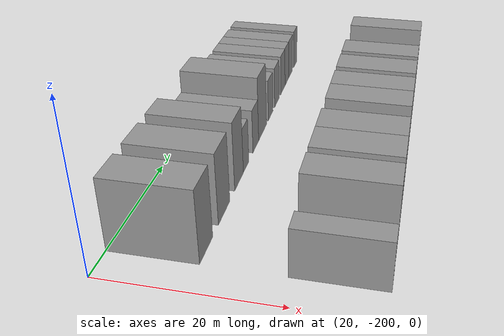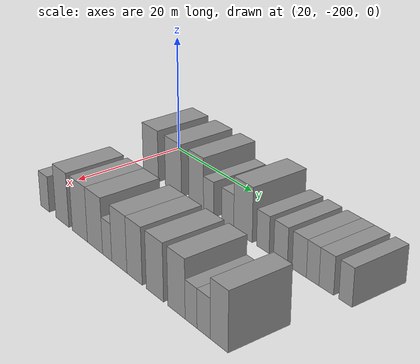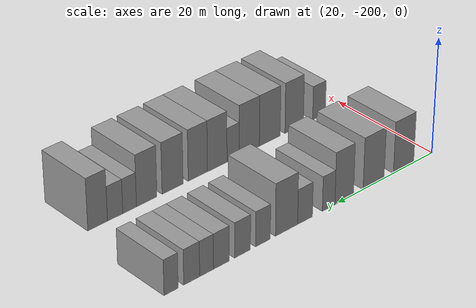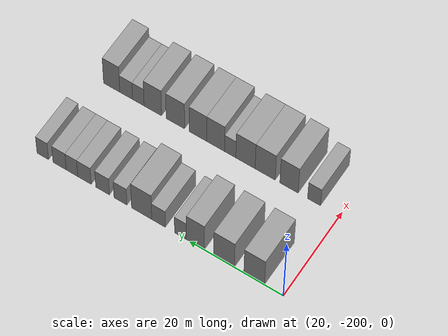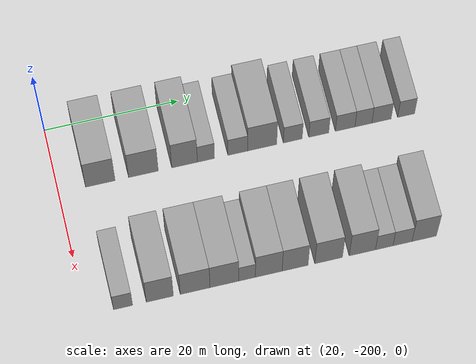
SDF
<sdf version="1.6">
 <world name="default">
  <model name="building_1">
   <static>1</static>
   <pose>25.0000 -193.8158 0 0.000000 0.000000 0.000000</pose>
   <link name="link">
    <pose>0 0 4.50 0 0 0</pose>
    <collision name="collision"><geometry><box><size>10.0000 4.3684 9.0000</size></box></geometry></collision>
    <visual name="visual">
     <cast_shadows>0</cast_shadows>
     <geometry><box><size>10.0000 4.3684 9.0000</size></box></geometry>
     <material>
      <script>
       <uri>model://grey_wall/materials/scripts</uri>
       <uri>model://grey_wall/materials/textures</uri>
       <name>vrc/grey_wall</name>
      </script>
     </material>
    </visual>
   </link>
  </model>
  <model name="building_2">
   <static>1</static>
   <pose>25.0000 -187.4252 0 0.000000 0.000000 0.000000</pose>
   <link name="link">
    <pose>0 0 4.50 0 0 0</pose>
    <collision name="collision"><geometry><box><size>10.0000 4.4127 9.0000</size></box></geometry></collision>
    <visual name="visual">
     <cast_shadows>0</cast_shadows>
     <geometry><box><size>10.0000 4.4127 9.0000</size></box></geometry>
     <material>
      <script>
       <uri>model://grey_wall/materials/scripts</uri>
       <uri>model://grey_wall/materials/textures</uri>
       <name>vrc/grey_wall</name>
      </script>
     </material>
    </visual>
   </link>
  </model>
  <model name="building_3">
   <static>1</static>
   <pose>25.0000 -181.3065 0 0.000000 0.000000 0.000000</pose>
   <link name="link">
    <pose>0 0 4.50 0 0 0</pose>
    <collision name="collision"><geometry><box><size>10.0000 3.8246 9.0000</size></box></geometry></collision>
    <visual name="visual">
     <cast_shadows>0</cast_shadows>
     <geometry><box><size>10.0000 3.8246 9.0000</size></box></geometry>
     <material>
      <script>
       <uri>model://grey_wall/materials/scripts</uri>
       <uri>model://grey_wall/materials/textures</uri>
       <name>vrc/grey_wall</name>
      </script>
     </material>
    </visual>
   </link>
  </model>
  <model name="building_4">
   <static>1</static>
   <pose>25.0000 -178.1168 0 0.000000 0.000000 0.000000</pose>
   <link name="link">
    <pose>0 0 3.00 0 0 0</pose>
    <collision name="collision"><geometry><box><size>10.0000 2.5548 6.0000</size></box></geometry></collision>
    <visual name="visual">
     <cast_shadows>0</cast_shadows>
     <geometry><box><size>10.0000 2.5548 6.0000</size></box></geometry>
     <material>
      <script>
       <uri>model://grey_wall/materials/scripts</uri>
       <uri>model://grey_wall/materials/textures</uri>
       <name>vrc/grey_wall</name>
      </script>
     </material>
    </visual>
   </link>
  </model>
  <model name="building_5">
   <static>1</static>
   <pose>25.0000 -173.3668 0 0.000000 0.000000 0.000000</pose>
   <link name="link">
    <pose>0 0 3.00 0 0 0</pose>
    <collision name="collision"><geometry><box><size>10.0000 2.9451 6.0000</size></box></geometry></collision>
    <visual name="visual">
     <cast_shadows>0</cast_shadows>
     <geometry><box><size>10.0000 2.9451 6.0000</size></box></geometry>
     <material>
      <script>
       <uri>model://grey_wall/materials/scripts</uri>
       <uri>model://grey_wall/materials/textures</uri>
       <name>vrc/grey_wall</name>
      </script>
     </material>
    </visual>
   </link>
  </model>
  <model name="building_6">
   <static>1</static>
   <pose>25.0000 -169.7110 0 0.000000 0.000000 0.000000</pose>
   <link name="link">
    <pose>0 0 4.50 0 0 0</pose>
    <collision name="collision"><geometry><box><size>10.0000 4.3665 9.0000</size></box></geometry></collision>
    <visual name="visual">
     <cast_shadows>0</cast_shadows>
     <geometry><box><size>10.0000 4.3665 9.0000</size></box></geometry>
     <material>
      <script>
       <uri>model://grey_wall/materials/scripts</uri>
       <uri>model://grey_wall/materials/textures</uri>
       <name>vrc/grey_wall</name>
      </script>
     </material>
    </visual>
   </link>
  </model>
  <model name="building_7">
   <static>1</static>
   <pose>25.0000 -165.1141 0 0.000000 0.000000 0.000000</pose>
   <link name="link">
    <pose>0 0 3.00 0 0 0</pose>
    <collision name="collision"><geometry><box><size>10.0000 2.8274 6.0000</size></box></geometry></collision>
    <visual name="visual">
     <cast_shadows>0</cast_shadows>
     <geometry><box><size>10.0000 2.8274 6.0000</size></box></geometry>
     <material>
      <script>
       <uri>model://grey_wall/materials/scripts</uri>
       <uri>model://grey_wall/materials/textures</uri>
       <name>vrc/grey_wall</name>
      </script>
     </material>
    </visual>
   </link>
  </model>
  <model name="building_8">
   <static>1</static>
   <pose>25.0000 -161.2014 0 0.000000 0.000000 0.000000</pose>
   <link name="link">
    <pose>0 0 3.00 0 0 0</pose>
    <collision name="collision"><geometry><box><size>10.0000 2.9981 6.0000</size></box></geometry></collision>
    <visual name="visual">
     <cast_shadows>0</cast_shadows>
     <geometry><box><size>10.0000 2.9981 6.0000</size></box></geometry>
     <material>
      <script>
       <uri>model://grey_wall/materials/scripts</uri>
       <uri>model://grey_wall/materials/textures</uri>
       <name>vrc/grey_wall</name>
      </script>
     </material>
    </visual>
   </link>
  </model>
  <model name="building_9">
   <static>1</static>
   <pose>25.0000 -157.2229 0 0.000000 0.000000 0.000000</pose>
   <link name="link">
    <pose>0 0 3.00 0 0 0</pose>
    <collision name="collision"><geometry><box><size>10.0000 2.9589 6.0000</size></box></geometry></collision>
    <visual name="visual">
     <cast_shadows>0</cast_shadows>
     <geometry><box><size>10.0000 2.9589 6.0000</size></box></geometry>
     <material>
      <script>
       <uri>model://grey_wall/materials/scripts</uri>
       <uri>model://grey_wall/materials/textures</uri>
       <name>vrc/grey_wall</name>
      </script>
     </material>
    </visual>
   </link>
  </model>
  <model name="building_10">
   <static>1</static>
   <pose>25.0000 -154.4646 0 0.000000 0.000000 0.000000</pose>
   <link name="link">
    <pose>0 0 3.00 0 0 0</pose>
    <collision name="collision"><geometry><box><size>10.0000 2.5576 6.0000</size></box></geometry></collision>
    <visual name="visual">
     <cast_shadows>0</cast_shadows>
     <geometry><box><size>10.0000 2.5576 6.0000</size></box></geometry>
     <material>
      <script>
       <uri>model://grey_wall/materials/scripts</uri>
       <uri>model://grey_wall/materials/textures</uri>
       <name>vrc/grey_wall</name>
      </script>
     </material>
    </visual>
   </link>
  </model>
  <model name="building_11">
   <static>1</static>
   <pose>25.0000 -151.7313 0 0.000000 0.000000 0.000000</pose>
   <link name="link">
    <pose>0 0 3.00 0 0 0</pose>
    <collision name="collision"><geometry><box><size>10.0000 2.9090 6.0000</size></box></geometry></collision>
    <visual name="visual">
     <cast_shadows>0</cast_shadows>
     <geometry><box><size>10.0000 2.9090 6.0000</size></box></geometry>
     <material>
      <script>
       <uri>model://grey_wall/materials/scripts</uri>
       <uri>model://grey_wall/materials/textures</uri>
       <name>vrc/grey_wall</name>
      </script>
     </material>
    </visual>
   </link>
  </model>
  <model name="building_12">
   <static>1</static>
   <pose>25.0000 -148.0010 0 0.000000 0.000000 0.000000</pose>
   <link name="link">
    <pose>0 0 3.00 0 0 0</pose>
    <collision name="collision"><geometry><box><size>10.0000 2.5517 6.0000</size></box></geometry></collision>
    <visual name="visual">
     <cast_shadows>0</cast_shadows>
     <geometry><box><size>10.0000 2.5517 6.0000</size></box></geometry>
     <material>
      <script>
       <uri>model://grey_wall/materials/scripts</uri>
       <uri>model://grey_wall/materials/textures</uri>
       <name>vrc/grey_wall</name>
      </script>
     </material>
    </visual>
   </link>
  </model>
  <model name="building_99">
   <static>1</static>
   <pose>44.0000 -194.6192 0 0.000000 0.000000 0.000000</pose>
   <link name="link">
    <pose>0 0 3.00 0 0 0</pose>
    <collision name="collision"><geometry><box><size>10.0000 2.7616 6.0000</size></box></geometry></collision>
    <visual name="visual">
     <cast_shadows>0</cast_shadows>
     <geometry><box><size>10.0000 2.7616 6.0000</size></box></geometry>
     <material>
      <script>
       <uri>model://grey_wall/materials/scripts</uri>
       <uri>model://grey_wall/materials/textures</uri>
       <name>vrc/grey_wall</name>
      </script>
     </material>
    </visual>
   </link>
  </model>
  <model name="building_100">
   <static>1</static>
   <pose>44.0000 -189.2688 0 0.000000 0.000000 0.000000</pose>
   <link name="link">
    <pose>0 0 4.50 0 0 0</pose>
    <collision name="collision"><geometry><box><size>10.0000 3.9391 9.0000</size></box></geometry></collision>
    <visual name="visual">
     <cast_shadows>0</cast_shadows>
     <geometry><box><size>10.0000 3.9391 9.0000</size></box></geometry>
     <material>
      <script>
       <uri>model://grey_wall/materials/scripts</uri>
       <uri>model://grey_wall/materials/textures</uri>
       <name>vrc/grey_wall</name>
      </script>
     </material>
    </visual>
   </link>
  </model>
  <model name="building_101">
   <static>1</static>
   <pose>44.0000 -184.1315 0 0.000000 0.000000 0.000000</pose>
   <link name="link">
    <pose>0 0 4.50 0 0 0</pose>
    <collision name="collision"><geometry><box><size>10.0000 4.3356 9.0000</size></box></geometry></collision>
    <visual name="visual">
     <cast_shadows>0</cast_shadows>
     <geometry><box><size>10.0000 4.3356 9.0000</size></box></geometry>
     <material>
      <script>
       <uri>model://grey_wall/materials/scripts</uri>
       <uri>model://grey_wall/materials/textures</uri>
       <name>vrc/grey_wall</name>
      </script>
     </material>
    </visual>
   </link>
  </model>
  <model name="building_102">
   <static>1</static>
   <pose>44.0000 -179.8727 0 0.000000 0.000000 0.000000</pose>
   <link name="link">
    <pose>0 0 4.50 0 0 0</pose>
    <collision name="collision"><geometry><box><size>10.0000 4.1820 9.0000</size></box></geometry></collision>
    <visual name="visual">
     <cast_shadows>0</cast_shadows>
     <geometry><box><size>10.0000 4.1820 9.0000</size></box></geometry>
     <material>
      <script>
       <uri>model://grey_wall/materials/scripts</uri>
       <uri>model://grey_wall/materials/textures</uri>
       <name>vrc/grey_wall</name>
      </script>
     </material>
    </visual>
   </link>
  </model>
  <model name="building_103">
   <static>1</static>
   <pose>44.0000 -176.5561 0 0.000000 0.000000 0.000000</pose>
   <link name="link">
    <pose>0 0 3.00 0 0 0</pose>
    <collision name="collision"><geometry><box><size>10.0000 2.4511 6.0000</size></box></geometry></collision>
    <visual name="visual">
     <cast_shadows>0</cast_shadows>
     <geometry><box><size>10.0000 2.4511 6.0000</size></box></geometry>
     <material>
      <script>
       <uri>model://grey_wall/materials/scripts</uri>
       <uri>model://grey_wall/materials/textures</uri>
       <name>vrc/grey_wall</name>
      </script>
     </material>
    </visual>
   </link>
  </model>
  <model name="building_104">
   <static>1</static>
   <pose>44.0000 -173.3631 0 0.000000 0.000000 0.000000</pose>
   <link name="link">
    <pose>0 0 4.50 0 0 0</pose>
    <collision name="collision"><geometry><box><size>10.0000 3.9349 9.0000</size></box></geometry></collision>
    <visual name="visual">
     <cast_shadows>0</cast_shadows>
     <geometry><box><size>10.0000 3.9349 9.0000</size></box></geometry>
     <material>
      <script>
       <uri>model://grey_wall/materials/scripts</uri>
       <uri>model://grey_wall/materials/textures</uri>
       <name>vrc/grey_wall</name>
      </script>
     </material>
    </visual>
   </link>
  </model>
  <model name="building_105">
   <static>1</static>
   <pose>44.0000 -169.4930 0 0.000000 0.000000 0.000000</pose>
   <link name="link">
    <pose>0 0 4.50 0 0 0</pose>
    <collision name="collision"><geometry><box><size>10.0000 3.8055 9.0000</size></box></geometry></collision>
    <visual name="visual">
     <cast_shadows>0</cast_shadows>
     <geometry><box><size>10.0000 3.8055 9.0000</size></box></geometry>
     <material>
      <script>
       <uri>model://grey_wall/materials/scripts</uri>
       <uri>model://grey_wall/materials/textures</uri>
       <name>vrc/grey_wall</name>
      </script>
     </material>
    </visual>
   </link>
  </model>
  <model name="building_106">
   <static>1</static>
   <pose>44.0000 -164.5534 0 0.000000 0.000000 0.000000</pose>
   <link name="link">
    <pose>0 0 4.50 0 0 0</pose>
    <collision name="collision"><geometry><box><size>10.0000 4.0736 9.0000</size></box></geometry></collision>
    <visual name="visual">
     <cast_shadows>0</cast_shadows>
     <geometry><box><size>10.0000 4.0736 9.0000</size></box></geometry>
     <material>
      <script>
       <uri>model://grey_wall/materials/scripts</uri>
       <uri>model://grey_wall/materials/textures</uri>
       <name>vrc/grey_wall</name>
      </script>
     </material>
    </visual>
   </link>
  </model>
  <model name="building_107">
   <static>1</static>
   <pose>44.0000 -159.5741 0 0.000000 0.000000 0.000000</pose>
   <link name="link">
    <pose>0 0 4.50 0 0 0</pose>
    <collision name="collision"><geometry><box><size>10.0000 3.8849 9.0000</size></box></geometry></collision>
    <visual name="visual">
     <cast_shadows>0</cast_shadows>
     <geometry><box><size>10.0000 3.8849 9.0000</size></box></geometry>
     <material>
      <script>
       <uri>model://grey_wall/materials/scripts</uri>
       <uri>model://grey_wall/materials/textures</uri>
       <name>vrc/grey_wall</name>
      </script>
     </material>
    </visual>
   </link>
  </model>
  <model name="building_108">
   <static>1</static>
   <pose>44.0000 -156.3396 0 0.000000 0.000000 0.000000</pose>
   <link name="link">
    <pose>0 0 3.00 0 0 0</pose>
    <collision name="collision"><geometry><box><size>10.0000 2.5842 6.0000</size></box></geometry></collision>
    <visual name="visual">
     <cast_shadows>0</cast_shadows>
     <geometry><box><size>10.0000 2.5842 6.0000</size></box></geometry>
     <material>
      <script>
       <uri>model://grey_wall/materials/scripts</uri>
       <uri>model://grey_wall/materials/textures</uri>
       <name>vrc/grey_wall</name>
      </script>
     </material>
    </visual>
   </link>
  </model>
  <model name="building_109">
   <static>1</static>
   <pose>44.0000 -153.6319 0 0.000000 0.000000 0.000000</pose>
   <link name="link">
    <pose>0 0 3.00 0 0 0</pose>
    <collision name="collision"><geometry><box><size>10.0000 2.8313 6.0000</size></box></geometry></collision>
    <visual name="visual">
     <cast_shadows>0</cast_shadows>
     <geometry><box><size>10.0000 2.8313 6.0000</size></box></geometry>
     <material>
      <script>
       <uri>model://grey_wall/materials/scripts</uri>
       <uri>model://grey_wall/materials/textures</uri>
       <name>vrc/grey_wall</name>
      </script>
     </material>
    </visual>
   </link>
  </model>
  <model name="building_110">
   <static>1</static>
   <pose>44.0000 -150.4083 0 0.000000 0.000000 0.000000</pose>
   <link name="link">
    <pose>0 0 4.50 0 0 0</pose>
    <collision name="collision"><geometry><box><size>10.0000 3.6159 9.0000</size></box></geometry></collision>
    <visual name="visual">
     <cast_shadows>0</cast_shadows>
     <geometry><box><size>10.0000 3.6159 9.0000</size></box></geometry>
     <material>
      <script>
       <uri>model://grey_wall/materials/scripts</uri>
       <uri>model://grey_wall/materials/textures</uri>
       <name>vrc/grey_wall</name>
      </script>
     </material>
    </visual>
   </link>
  </model>
 </world>
</sdf>
